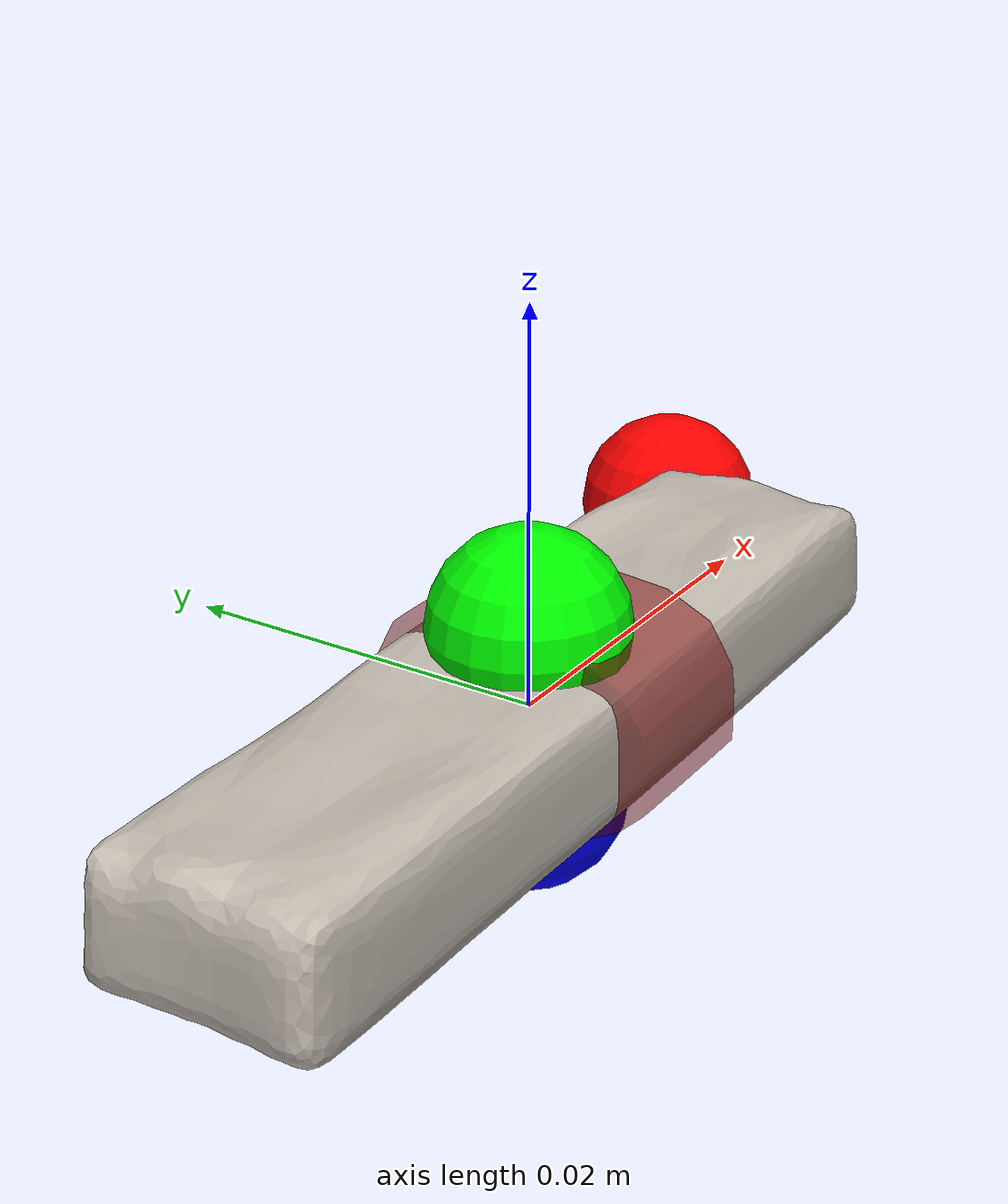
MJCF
<?xml version='1.0' encoding='UTF-8'?>
<mujoco model="model">
  <compiler angle="radian"/>
  <asset>
    <mesh file="visual/CreamCheese009.obj" name="CreamCheese009_vis"/>
    <texture file="visual/T_BC001.png" name="CreamCheese009_material" type="2d"/>
    <material name="CreamCheese009_material" rgba="1 1 1 1.0" texture="CreamCheese009_material" shininess="0.10000002384185791" specular="0.33333333333333337"/>
    <mesh file="collision/CreamCheese009001.obj" name="CreamCheese009001_mesh"/>
  </asset>
  <default>
    <default class="visual">
      <geom conaffinity="0" contype="0" group="1" type="mesh"/>
    </default>
    <default class="collision">
      <geom group="0" rgba="0.5 0 0 0.5"/>
    </default>
    <default class="spawn">
      <geom group="0" rgba="1 1 1 0.5" contype="0" conaffinity="0"/>
      <site group="0" rgba="1 1 1 0.5"/>
    </default>
    <default class="region">
      <geom group="1" conaffinity="0" contype="0" rgba="0 1 0 0"/>
    </default>
  </default>
  <worldbody>
    <body>
      <body name="object">
        <geom mesh="CreamCheese009_vis" type="mesh" solimp="0.998 0.998 0.001" solref="0.001 1" density="100" friction="0.95 0.3 0.1" class="visual" material="CreamCheese009_material"/>
        <geom mesh="CreamCheese009001_mesh" type="mesh" class="collision"/>
      </body>
      <site rgba="1 0 0 1" size="0.005" pos="0.026200430000000004 0.00704323 -0.00018082499999999977" name="horizontal_radius_site"/>
      <site rgba="0 1 0 1" size="0.005" pos="-2.0569999999997196e-05 -6.759999999999499e-06 0.00419165" name="top_site"/>
      <site rgba="0 0 1 1" size="0.005" pos="-2.0569999999997196e-05 -6.759999999999499e-06 -0.0045533" name="bottom_site"/>
    </body>
  </worldbody>
  <actuator/>
</mujoco>
